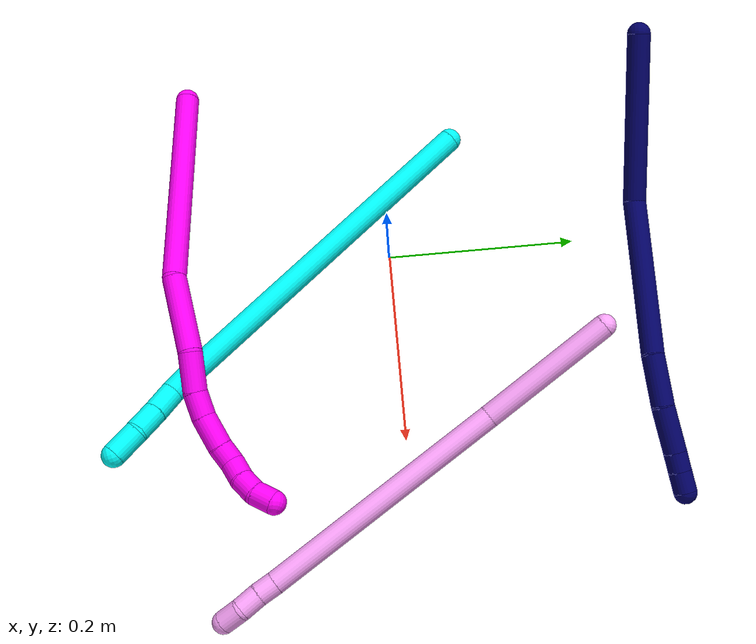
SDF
<sdf version="1.7">
 <world name="default">
  <model name="photoneo_s_sensor">
   <static>1</static>
   <pose>0 0 2 1.57079 1.57079 3.14159</pose>
   <link name="link">
    <inertial><mass>0.1</mass></inertial>
    <sensor name="sensor" type="depth">
     <update_rate>30</update_rate>
     <camera>
      <horizontal_fov>1.22</horizontal_fov>
      <image><width>1920</width><height>1200</height><format>B8G8R8</format></image>
      <clip><near>0.1</near><far>2</far></clip>
      <depth_camera><output>points</output></depth_camera>
     </camera>
     <plugin name="camera_plugin" filename="libgazebo_ros_depth_camera.so">
      <baseline>0.2</baseline>
      <alwaysOn>1</alwaysOn>
      <updateRate>0.0</updateRate>
      <cameraName>camera_ir</cameraName>
      <imageTopicName>/camera/color/image_raw</imageTopicName>
      <cameraInfoTopicName>/camera/color/camera_info</cameraInfoTopicName>
      <depthImageTopicName>/camera/depth/image_raw</depthImageTopicName>
      <depthImageCameraInfoTopicName>/camera/depth/camera_info</depthImageCameraInfoTopicName>
      <pointCloudTopicName>/camera/depth/points</pointCloudTopicName>
      <frameName>fr_optical</frameName>
      <pointCloudCutoff>0.1</pointCloudCutoff>
      <pointCloudCutoffMax>2.0</pointCloudCutoffMax>
      <distortionK1>0</distortionK1>
      <distortionK2>0</distortionK2>
      <distortionK3>0</distortionK3>
      <distortionT1>0</distortionT1>
      <distortionT2>0</distortionT2>
      <CxPrime>0</CxPrime>
      <Cx>0</Cx>
      <Cy>0</Cy>
      <focalLength>0</focalLength>
      <hackBaseline>0</hackBaseline>
     </plugin>
    </sensor>
   </link>
  </model>
  <model name="bin">
   <static>1</static>
   <link name="bottom">
    <collision name="collision-bottom">
     <pose>0 0 -0.01 0 -0 0</pose>
     <geometry><box><size>0.8 0.6 0.02</size></box></geometry>
     <surface>
      <friction><ode><mu>100</mu><mu2>100</mu2></ode></friction>
      <contact><collide_bitmask>65535</collide_bitmask></contact>
     </surface>
    </collision>
   </link>
   <link name="west_wall">
    <collision name="collision-west_wall">
     <pose>-0.41 0 0.1 0 -0 0</pose>
     <geometry><box><size>0.02 0.6 0.2</size></box></geometry>
     <surface>
      <friction><ode><mu>100</mu><mu2>100</mu2></ode></friction>
      <contact><collide_bitmask>65535</collide_bitmask></contact>
     </surface>
    </collision>
   </link>
   <link name="east_wall">
    <collision name="collision-east_wall">
     <pose>0.41 0 0.1 0 -0 0</pose>
     <geometry><box><size>0.02 0.6 0.2</size></box></geometry>
     <surface>
      <friction><ode><mu>100</mu><mu2>100</mu2></ode></friction>
      <contact><collide_bitmask>65535</collide_bitmask></contact>
     </surface>
    </collision>
   </link>
   <link name="south_wall">
    <collision name="collision-south_wall">
     <pose>0 -0.31 0.1 0 -0 0</pose>
     <geometry><box><size>0.8 0.02 0.2</size></box></geometry>
     <surface>
      <friction><ode><mu>100</mu><mu2>100</mu2></ode></friction>
      <contact><collide_bitmask>65535</collide_bitmask></contact>
     </surface>
    </collision>
   </link>
   <link name="north_wall">
    <collision name="collision-north_wall">
     <pose>0 0.31 0.1 0 -0 0</pose>
     <geometry><box><size>0.8 0.02 0.2</size></box></geometry>
     <surface>
      <friction><ode><mu>100</mu><mu2>100</mu2></ode></friction>
      <contact><collide_bitmask>65535</collide_bitmask></contact>
     </surface>
    </collision>
   </link>
  </model>
  <model name="3">
   <static>0</static>
   <link name="3">
    <collision name="collision-cylinder-e_1_1_4">
     <pose>0.038947 -0.082717 0.170787 0.451029 0.20243 0.046592</pose>
     <geometry><cylinder><radius>0.0125</radius><length>0.387439</length></cylinder></geometry>
     <surface>
      <friction><ode><mu>1.16</mu><mu2>1.16</mu2><slip1>0</slip1><slip2>0</slip2></ode></friction>
      <contact><ode><kp>1e+06</kp><kd>1</kd><max_vel>0</max_vel><min_depth>0.001</min_depth></ode></contact>
     </surface>
    </collision>
    <visual name="visual-cylinder-e_1_1_4">
     <pose>0.038947 -0.082717 0.170787 0.451029 0.20243 0.046592</pose>
     <geometry><cylinder><radius>0.0125</radius><length>0.387439</length></cylinder></geometry>
     <material><ambient>0.003922 1 0.996078 1</ambient></material>
    </visual>
    <collision name="collision-cylinder-e_2_4_5">
     <pose>0.08068 -0.170915 0.351093 0.522494 0.24832 0.066709</pose>
     <geometry><cylinder><radius>0.0125</radius><length>0.022664</length></cylinder></geometry>
     <surface>
      <friction><ode><mu>1.16</mu><mu2>1.16</mu2><slip1>0</slip1><slip2>0</slip2></ode></friction>
      <contact><ode><kp>1e+06</kp><kd>1</kd><max_vel>0</max_vel><min_depth>0.001</min_depth></ode></contact>
     </surface>
    </collision>
    <visual name="visual-cylinder-e_2_4_5">
     <pose>0.08068 -0.170915 0.351093 0.522494 0.24832 0.066709</pose>
     <geometry><cylinder><radius>0.0125</radius><length>0.022664</length></cylinder></geometry>
     <material><ambient>0.003922 1 0.996078 1</ambient></material>
    </visual>
    <collision name="collision-cylinder-e_3_5_6">
     <pose>0.090576 -0.184009 0.370883 0.637821 0.507613 0.170881</pose>
     <geometry><cylinder><radius>0.0125</radius><length>0.029259</length></cylinder></geometry>
     <surface>
      <friction><ode><mu>1.16</mu><mu2>1.16</mu2><slip1>0</slip1><slip2>0</slip2></ode></friction>
      <contact><ode><kp>1e+06</kp><kd>1</kd><max_vel>0</max_vel><min_depth>0.001</min_depth></ode></contact>
     </surface>
    </collision>
    <visual name="visual-cylinder-e_3_5_6">
     <pose>0.090576 -0.184009 0.370883 0.637821 0.507613 0.170881</pose>
     <geometry><cylinder><radius>0.0125</radius><length>0.029259</length></cylinder></geometry>
     <material><ambient>0.003922 1 0.996078 1</ambient></material>
    </visual>
    <collision name="collision-cylinder-e_4_6_7">
     <pose>0.10463 -0.198641 0.391606 0.591465 0.503944 0.156548</pose>
     <geometry><cylinder><radius>0.0125</radius><length>0.028755</length></cylinder></geometry>
     <surface>
      <friction><ode><mu>1.16</mu><mu2>1.16</mu2><slip1>0</slip1><slip2>0</slip2></ode></friction>
      <contact><ode><kp>1e+06</kp><kd>1</kd><max_vel>0</max_vel><min_depth>0.001</min_depth></ode></contact>
     </surface>
    </collision>
    <visual name="visual-cylinder-e_4_6_7">
     <pose>0.10463 -0.198641 0.391606 0.591465 0.503944 0.156548</pose>
     <geometry><cylinder><radius>0.0125</radius><length>0.028755</length></cylinder></geometry>
     <material><ambient>0.003922 1 0.996078 1</ambient></material>
    </visual>
    <collision name="collision-cylinder-e_5_7_2">
     <pose>0.115615 -0.213409 0.415391 0.526357 0.256385 0.06943</pose>
     <geometry><cylinder><radius>0.0125</radius><length>0.031884</length></cylinder></geometry>
     <surface>
      <friction><ode><mu>1.16</mu><mu2>1.16</mu2><slip1>0</slip1><slip2>0</slip2></ode></friction>
      <contact><ode><kp>1e+06</kp><kd>1</kd><max_vel>0</max_vel><min_depth>0.001</min_depth></ode></contact>
     </surface>
    </collision>
    <visual name="visual-cylinder-e_5_7_2">
     <pose>0.115615 -0.213409 0.415391 0.526357 0.256385 0.06943</pose>
     <geometry><cylinder><radius>0.0125</radius><length>0.031884</length></cylinder></geometry>
     <material><ambient>0.003922 1 0.996078 1</ambient></material>
    </visual>
    <collision name="collision-sphere-2">
     <pose>0.119658 -0.221156 0.428724 0 -0 0</pose>
     <geometry><sphere><radius>0.0125</radius></sphere></geometry>
     <surface>
      <friction><ode><mu>1.16</mu><mu2>1.16</mu2><slip1>0</slip1><slip2>0</slip2></ode></friction>
      <contact><ode><kp>1e+06</kp><kd>1</kd><max_vel>0</max_vel><min_depth>0.001</min_depth></ode></contact>
     </surface>
    </collision>
    <visual name="visual-sphere-2">
     <pose>0.119658 -0.221156 0.428724 0 -0 0</pose>
     <geometry><sphere><radius>0.0125</radius></sphere></geometry>
     <material><ambient>0.003922 1 0.996078 1</ambient></material>
    </visual>
    <collision name="collision-sphere-7">
     <pose>0.111573 -0.205662 0.402057 0 -0 0</pose>
     <geometry><sphere><radius>0.0125</radius></sphere></geometry>
     <surface>
      <friction><ode><mu>1.16</mu><mu2>1.16</mu2><slip1>0</slip1><slip2>0</slip2></ode></friction>
      <contact><ode><kp>1e+06</kp><kd>1</kd><max_vel>0</max_vel><min_depth>0.001</min_depth></ode></contact>
     </surface>
    </collision>
    <visual name="visual-sphere-7">
     <pose>0.111573 -0.205662 0.402057 0 -0 0</pose>
     <geometry><sphere><radius>0.0125</radius></sphere></geometry>
     <material><ambient>0.003922 1 0.996078 1</ambient></material>
    </visual>
    <collision name="collision-sphere-6">
     <pose>0.097687 -0.191621 0.381154 0 -0 0</pose>
     <geometry><sphere><radius>0.0125</radius></sphere></geometry>
     <surface>
      <friction><ode><mu>1.16</mu><mu2>1.16</mu2><slip1>0</slip1><slip2>0</slip2></ode></friction>
      <contact><ode><kp>1e+06</kp><kd>1</kd><max_vel>0</max_vel><min_depth>0.001</min_depth></ode></contact>
     </surface>
    </collision>
    <visual name="visual-sphere-6">
     <pose>0.097687 -0.191621 0.381154 0 -0 0</pose>
     <geometry><sphere><radius>0.0125</radius></sphere></geometry>
     <material><ambient>0.003922 1 0.996078 1</ambient></material>
    </visual>
    <collision name="collision-sphere-5">
     <pose>0.083465 -0.176396 0.360612 0 -0 0</pose>
     <geometry><sphere><radius>0.0125</radius></sphere></geometry>
     <surface>
      <friction><ode><mu>1.16</mu><mu2>1.16</mu2><slip1>0</slip1><slip2>0</slip2></ode></friction>
      <contact><ode><kp>1e+06</kp><kd>1</kd><max_vel>0</max_vel><min_depth>0.001</min_depth></ode></contact>
     </surface>
    </collision>
    <visual name="visual-sphere-5">
     <pose>0.083465 -0.176396 0.360612 0 -0 0</pose>
     <geometry><sphere><radius>0.0125</radius></sphere></geometry>
     <material><ambient>0.003922 1 0.996078 1</ambient></material>
    </visual>
    <collision name="collision-sphere-1">
     <geometry><sphere><radius>0.0125</radius></sphere></geometry>
     <surface>
      <friction><ode><mu>1.16</mu><mu2>1.16</mu2><slip1>0</slip1><slip2>0</slip2></ode></friction>
      <contact><ode><kp>1e+06</kp><kd>1</kd><max_vel>0</max_vel><min_depth>0.001</min_depth></ode></contact>
     </surface>
    </collision>
    <visual name="visual-sphere-1">
     <geometry><sphere><radius>0.0125</radius></sphere></geometry>
     <material><ambient>0.003922 1 0.996078 1</ambient></material>
    </visual>
    <collision name="collision-sphere-4">
     <pose>0.077895 -0.165433 0.341575 0 -0 0</pose>
     <geometry><sphere><radius>0.0125</radius></sphere></geometry>
     <surface>
      <friction><ode><mu>1.16</mu><mu2>1.16</mu2><slip1>0</slip1><slip2>0</slip2></ode></friction>
      <contact><ode><kp>1e+06</kp><kd>1</kd><max_vel>0</max_vel><min_depth>0.001</min_depth></ode></contact>
     </surface>
    </collision>
    <visual name="visual-sphere-4">
     <pose>0.077895 -0.165433 0.341575 0 -0 0</pose>
     <geometry><sphere><radius>0.0125</radius></sphere></geometry>
     <material><ambient>0.003922 1 0.996078 1</ambient></material>
    </visual>
    <inertial>
     <pose>0.052526 -0.107642 0.218966 0 -0 0</pose>
     <mass>0.5</mass>
     <inertia>
      <ixx>0.005001</ixx>
      <ixy>0</ixy>
      <ixz>0</ixz>
      <iyy>0.004607</iyy>
      <iyz>0</iyz>
      <izz>0.001133</izz>
     </inertia>
    </inertial>
   </link>
   <pose>-0.122508 0.07688 0.012292 2.08361 -1.54 -0.272068</pose>
  </model>
  <model name="4">
   <static>0</static>
   <link name="4">
    <collision name="collision-cylinder-e_1_1_4">
     <pose>0.013404 -0.070934 -0.025686 1.91822 0.175836 0.250018</pose>
     <geometry><cylinder><radius>0.0125</radius><length>0.153246</length></cylinder></geometry>
     <surface>
      <friction><ode><mu>1.16</mu><mu2>1.16</mu2><slip1>0</slip1><slip2>0</slip2></ode></friction>
      <contact><ode><kp>1e+06</kp><kd>1</kd><max_vel>0</max_vel><min_depth>0.001</min_depth></ode></contact>
     </surface>
    </collision>
    <visual name="visual-cylinder-e_1_1_4">
     <pose>0.013404 -0.070934 -0.025686 1.91822 0.175836 0.250018</pose>
     <geometry><cylinder><radius>0.0125</radius><length>0.153246</length></cylinder></geometry>
     <material><ambient>1 0.65098 0.996078 1</ambient></material>
    </visual>
    <collision name="collision-cylinder-e_2_4_5">
     <pose>0.04358 -0.26639 -0.112298 2.02583 0.120406 0.192594</pose>
     <geometry><cylinder><radius>0.0125</radius><length>0.279277</length></cylinder></geometry>
     <surface>
      <friction><ode><mu>1.16</mu><mu2>1.16</mu2><slip1>0</slip1><slip2>0</slip2></ode></friction>
      <contact><ode><kp>1e+06</kp><kd>1</kd><max_vel>0</max_vel><min_depth>0.001</min_depth></ode></contact>
     </surface>
    </collision>
    <visual name="visual-cylinder-e_2_4_5">
     <pose>0.04358 -0.26639 -0.112298 2.02583 0.120406 0.192594</pose>
     <geometry><cylinder><radius>0.0125</radius><length>0.279277</length></cylinder></geometry>
     <material><ambient>1 0.65098 0.996078 1</ambient></material>
    </visual>
    <collision name="collision-cylinder-e_3_5_6">
     <pose>0.06184 -0.399928 -0.178131 2.06913 0.143842 0.24127</pose>
     <geometry><cylinder><radius>0.0125</radius><length>0.020744</length></cylinder></geometry>
     <surface>
      <friction><ode><mu>1.16</mu><mu2>1.16</mu2><slip1>0</slip1><slip2>0</slip2></ode></friction>
      <contact><ode><kp>1e+06</kp><kd>1</kd><max_vel>0</max_vel><min_depth>0.001</min_depth></ode></contact>
     </surface>
    </collision>
    <visual name="visual-cylinder-e_3_5_6">
     <pose>0.06184 -0.399928 -0.178131 2.06913 0.143842 0.24127</pose>
     <geometry><cylinder><radius>0.0125</radius><length>0.020744</length></cylinder></geometry>
     <material><ambient>1 0.65098 0.996078 1</ambient></material>
    </visual>
    <collision name="collision-cylinder-e_4_6_7">
     <pose>0.064024 -0.419269 -0.188258 2.03901 0.060245 0.097928</pose>
     <geometry><cylinder><radius>0.0125</radius><length>0.023181</length></cylinder></geometry>
     <surface>
      <friction><ode><mu>1.16</mu><mu2>1.16</mu2><slip1>0</slip1><slip2>0</slip2></ode></friction>
      <contact><ode><kp>1e+06</kp><kd>1</kd><max_vel>0</max_vel><min_depth>0.001</min_depth></ode></contact>
     </surface>
    </collision>
    <visual name="visual-cylinder-e_4_6_7">
     <pose>0.064024 -0.419269 -0.188258 2.03901 0.060245 0.097928</pose>
     <geometry><cylinder><radius>0.0125</radius><length>0.023181</length></cylinder></geometry>
     <material><ambient>1 0.65098 0.996078 1</ambient></material>
    </visual>
    <collision name="collision-cylinder-e_5_7_2">
     <pose>0.068271 -0.440646 -0.195458 1.74793 0.306111 0.364564</pose>
     <geometry><cylinder><radius>0.0125</radius><length>0.023551</length></cylinder></geometry>
     <surface>
      <friction><ode><mu>1.16</mu><mu2>1.16</mu2><slip1>0</slip1><slip2>0</slip2></ode></friction>
      <contact><ode><kp>1e+06</kp><kd>1</kd><max_vel>0</max_vel><min_depth>0.001</min_depth></ode></contact>
     </surface>
    </collision>
    <visual name="visual-cylinder-e_5_7_2">
     <pose>0.068271 -0.440646 -0.195458 1.74793 0.306111 0.364564</pose>
     <geometry><cylinder><radius>0.0125</radius><length>0.023551</length></cylinder></geometry>
     <material><ambient>1 0.65098 0.996078 1</ambient></material>
    </visual>
    <collision name="collision-sphere-2">
     <pose>0.071819 -0.451699 -0.197436 0 -0 0</pose>
     <geometry><sphere><radius>0.0125</radius></sphere></geometry>
     <surface>
      <friction><ode><mu>1.16</mu><mu2>1.16</mu2><slip1>0</slip1><slip2>0</slip2></ode></friction>
      <contact><ode><kp>1e+06</kp><kd>1</kd><max_vel>0</max_vel><min_depth>0.001</min_depth></ode></contact>
     </surface>
    </collision>
    <visual name="visual-sphere-2">
     <pose>0.071819 -0.451699 -0.197436 0 -0 0</pose>
     <geometry><sphere><radius>0.0125</radius></sphere></geometry>
     <material><ambient>1 0.65098 0.996078 1</ambient></material>
    </visual>
    <collision name="collision-sphere-7">
     <pose>0.064722 -0.429593 -0.193479 0 -0 0</pose>
     <geometry><sphere><radius>0.0125</radius></sphere></geometry>
     <surface>
      <friction><ode><mu>1.16</mu><mu2>1.16</mu2><slip1>0</slip1><slip2>0</slip2></ode></friction>
      <contact><ode><kp>1e+06</kp><kd>1</kd><max_vel>0</max_vel><min_depth>0.001</min_depth></ode></contact>
     </surface>
    </collision>
    <visual name="visual-sphere-7">
     <pose>0.064722 -0.429593 -0.193479 0 -0 0</pose>
     <geometry><sphere><radius>0.0125</radius></sphere></geometry>
     <material><ambient>1 0.65098 0.996078 1</ambient></material>
    </visual>
    <collision name="collision-sphere-6">
     <pose>0.063326 -0.408945 -0.183037 0 -0 0</pose>
     <geometry><sphere><radius>0.0125</radius></sphere></geometry>
     <surface>
      <friction><ode><mu>1.16</mu><mu2>1.16</mu2><slip1>0</slip1><slip2>0</slip2></ode></friction>
      <contact><ode><kp>1e+06</kp><kd>1</kd><max_vel>0</max_vel><min_depth>0.001</min_depth></ode></contact>
     </surface>
    </collision>
    <visual name="visual-sphere-6">
     <pose>0.063326 -0.408945 -0.183037 0 -0 0</pose>
     <geometry><sphere><radius>0.0125</radius></sphere></geometry>
     <material><ambient>1 0.65098 0.996078 1</ambient></material>
    </visual>
    <collision name="collision-sphere-5">
     <pose>0.060353 -0.390912 -0.173224 0 -0 0</pose>
     <geometry><sphere><radius>0.0125</radius></sphere></geometry>
     <surface>
      <friction><ode><mu>1.16</mu><mu2>1.16</mu2><slip1>0</slip1><slip2>0</slip2></ode></friction>
      <contact><ode><kp>1e+06</kp><kd>1</kd><max_vel>0</max_vel><min_depth>0.001</min_depth></ode></contact>
     </surface>
    </collision>
    <visual name="visual-sphere-5">
     <pose>0.060353 -0.390912 -0.173224 0 -0 0</pose>
     <geometry><sphere><radius>0.0125</radius></sphere></geometry>
     <material><ambient>1 0.65098 0.996078 1</ambient></material>
    </visual>
    <collision name="collision-sphere-1">
     <geometry><sphere><radius>0.0125</radius></sphere></geometry>
     <surface>
      <friction><ode><mu>1.16</mu><mu2>1.16</mu2><slip1>0</slip1><slip2>0</slip2></ode></friction>
      <contact><ode><kp>1e+06</kp><kd>1</kd><max_vel>0</max_vel><min_depth>0.001</min_depth></ode></contact>
     </surface>
    </collision>
    <visual name="visual-sphere-1">
     <geometry><sphere><radius>0.0125</radius></sphere></geometry>
     <material><ambient>1 0.65098 0.996078 1</ambient></material>
    </visual>
    <collision name="collision-sphere-4">
     <pose>0.026807 -0.141868 -0.051372 0 -0 0</pose>
     <geometry><sphere><radius>0.0125</radius></sphere></geometry>
     <surface>
      <friction><ode><mu>1.16</mu><mu2>1.16</mu2><slip1>0</slip1><slip2>0</slip2></ode></friction>
      <contact><ode><kp>1e+06</kp><kd>1</kd><max_vel>0</max_vel><min_depth>0.001</min_depth></ode></contact>
     </surface>
    </collision>
    <visual name="visual-sphere-4">
     <pose>0.026807 -0.141868 -0.051372 0 -0 0</pose>
     <geometry><sphere><radius>0.0125</radius></sphere></geometry>
     <material><ambient>1 0.65098 0.996078 1</ambient></material>
    </visual>
    <inertial>
     <pose>0.0372 -0.22732 -0.095922 0 -0 0</pose>
     <mass>0.5</mass>
     <inertia>
      <ixx>0.002505</ixx>
      <ixy>0</ixy>
      <ixz>0</ixz>
      <iyy>-0.000453</iyy>
      <iyz>0</iyz>
      <izz>0.001627</izz>
     </inertia>
    </inertial>
   </link>
   <pose>0.104651 0.216395 0.056415 2.74381 0.50217 -2.44223</pose>
  </model>
  <model name="7">
   <static>0</static>
   <link name="7">
    <collision name="collision-cylinder-e_1_1_4">
     <pose>0.087016 0.017074 0.012875 -0.924702 1.32982 -0.744983</pose>
     <geometry><cylinder><radius>0.0125</radius><length>0.179211</length></cylinder></geometry>
     <surface>
      <friction><ode><mu>1.16</mu><mu2>1.16</mu2><slip1>0</slip1><slip2>0</slip2></ode></friction>
      <contact><ode><kp>1e+06</kp><kd>1</kd><max_vel>0</max_vel><min_depth>0.001</min_depth></ode></contact>
     </surface>
    </collision>
    <visual name="visual-cylinder-e_1_1_4">
     <pose>0.087016 0.017074 0.012875 -0.924702 1.32982 -0.744983</pose>
     <geometry><cylinder><radius>0.0125</radius><length>0.179211</length></cylinder></geometry>
     <material><ambient>0.003922 0 0.403922 1</ambient></material>
    </visual>
    <collision name="collision-cylinder-e_2_4_5">
     <pose>0.256121 0.011674 0.038494 1.05495 1.26587 0.807732</pose>
     <geometry><cylinder><radius>0.0125</radius><length>0.172115</length></cylinder></geometry>
     <surface>
      <friction><ode><mu>1.16</mu><mu2>1.16</mu2><slip1>0</slip1><slip2>0</slip2></ode></friction>
      <contact><ode><kp>1e+06</kp><kd>1</kd><max_vel>0</max_vel><min_depth>0.001</min_depth></ode></contact>
     </surface>
    </collision>
    <visual name="visual-cylinder-e_2_4_5">
     <pose>0.256121 0.011674 0.038494 1.05495 1.26587 0.807732</pose>
     <geometry><cylinder><radius>0.0125</radius><length>0.172115</length></cylinder></geometry>
     <material><ambient>0.003922 0 0.403922 1</ambient></material>
    </visual>
    <collision name="collision-cylinder-e_3_5_6">
     <pose>0.364711 -0.015306 0.058433 0.55946 1.26082 0.413272</pose>
     <geometry><cylinder><radius>0.0125</radius><length>0.055657</length></cylinder></geometry>
     <surface>
      <friction><ode><mu>1.16</mu><mu2>1.16</mu2><slip1>0</slip1><slip2>0</slip2></ode></friction>
      <contact><ode><kp>1e+06</kp><kd>1</kd><max_vel>0</max_vel><min_depth>0.001</min_depth></ode></contact>
     </surface>
    </collision>
    <visual name="visual-cylinder-e_3_5_6">
     <pose>0.364711 -0.015306 0.058433 0.55946 1.26082 0.413272</pose>
     <geometry><cylinder><radius>0.0125</radius><length>0.055657</length></cylinder></geometry>
     <material><ambient>0.003922 0 0.403922 1</ambient></material>
    </visual>
    <collision name="collision-cylinder-e_4_6_7">
     <pose>0.414403 -0.020569 0.074724 0.083109 1.1958 0.05662</pose>
     <geometry><cylinder><radius>0.0125</radius><length>0.049843</length></cylinder></geometry>
     <surface>
      <friction><ode><mu>1.16</mu><mu2>1.16</mu2><slip1>0</slip1><slip2>0</slip2></ode></friction>
      <contact><ode><kp>1e+06</kp><kd>1</kd><max_vel>0</max_vel><min_depth>0.001</min_depth></ode></contact>
     </surface>
    </collision>
    <visual name="visual-cylinder-e_4_6_7">
     <pose>0.414403 -0.020569 0.074724 0.083109 1.1958 0.05662</pose>
     <geometry><cylinder><radius>0.0125</radius><length>0.049843</length></cylinder></geometry>
     <material><ambient>0.003922 0 0.403922 1</ambient></material>
    </visual>
    <collision name="collision-cylinder-e_5_7_8">
     <pose>0.447201 -0.021836 0.087415 0.140857 1.20948 0.097433</pose>
     <geometry><cylinder><radius>0.0125</radius><length>0.020542</length></cylinder></geometry>
     <surface>
      <friction><ode><mu>1.16</mu><mu2>1.16</mu2><slip1>0</slip1><slip2>0</slip2></ode></friction>
      <contact><ode><kp>1e+06</kp><kd>1</kd><max_vel>0</max_vel><min_depth>0.001</min_depth></ode></contact>
     </surface>
    </collision>
    <visual name="visual-cylinder-e_5_7_8">
     <pose>0.447201 -0.021836 0.087415 0.140857 1.20948 0.097433</pose>
     <geometry><cylinder><radius>0.0125</radius><length>0.020542</length></cylinder></geometry>
     <material><ambient>0.003922 0 0.403922 1</ambient></material>
    </visual>
    <collision name="collision-cylinder-e_6_8_2">
     <pose>0.467374 -0.022958 0.095014 0.151747 1.20475 0.104451</pose>
     <geometry><cylinder><radius>0.0125</radius><length>0.022631</length></cylinder></geometry>
     <surface>
      <friction><ode><mu>1.16</mu><mu2>1.16</mu2><slip1>0</slip1><slip2>0</slip2></ode></friction>
      <contact><ode><kp>1e+06</kp><kd>1</kd><max_vel>0</max_vel><min_depth>0.001</min_depth></ode></contact>
     </surface>
    </collision>
    <visual name="visual-cylinder-e_6_8_2">
     <pose>0.467374 -0.022958 0.095014 0.151747 1.20475 0.104451</pose>
     <geometry><cylinder><radius>0.0125</radius><length>0.022631</length></cylinder></geometry>
     <material><ambient>0.003922 0 0.403922 1</ambient></material>
    </visual>
    <collision name="collision-sphere-2">
     <pose>0.47794 -0.02357 0.099017 0 -0 0</pose>
     <geometry><sphere><radius>0.0125</radius></sphere></geometry>
     <surface>
      <friction><ode><mu>1.16</mu><mu2>1.16</mu2><slip1>0</slip1><slip2>0</slip2></ode></friction>
      <contact><ode><kp>1e+06</kp><kd>1</kd><max_vel>0</max_vel><min_depth>0.001</min_depth></ode></contact>
     </surface>
    </collision>
    <visual name="visual-sphere-2">
     <pose>0.47794 -0.02357 0.099017 0 -0 0</pose>
     <geometry><sphere><radius>0.0125</radius></sphere></geometry>
     <material><ambient>0.003922 0 0.403922 1</ambient></material>
    </visual>
    <collision name="collision-sphere-4">
     <pose>0.174033 0.034148 0.02575 0 -0 0</pose>
     <geometry><sphere><radius>0.0125</radius></sphere></geometry>
     <surface>
      <friction><ode><mu>1.16</mu><mu2>1.16</mu2><slip1>0</slip1><slip2>0</slip2></ode></friction>
      <contact><ode><kp>1e+06</kp><kd>1</kd><max_vel>0</max_vel><min_depth>0.001</min_depth></ode></contact>
     </surface>
    </collision>
    <visual name="visual-sphere-4">
     <pose>0.174033 0.034148 0.02575 0 -0 0</pose>
     <geometry><sphere><radius>0.0125</radius></sphere></geometry>
     <material><ambient>0.003922 0 0.403922 1</ambient></material>
    </visual>
    <collision name="collision-sphere-1">
     <geometry><sphere><radius>0.0125</radius></sphere></geometry>
     <surface>
      <friction><ode><mu>1.16</mu><mu2>1.16</mu2><slip1>0</slip1><slip2>0</slip2></ode></friction>
      <contact><ode><kp>1e+06</kp><kd>1</kd><max_vel>0</max_vel><min_depth>0.001</min_depth></ode></contact>
     </surface>
    </collision>
    <visual name="visual-sphere-1">
     <geometry><sphere><radius>0.0125</radius></sphere></geometry>
     <material><ambient>0.003922 0 0.403922 1</ambient></material>
    </visual>
    <collision name="collision-sphere-8">
     <pose>0.456809 -0.022346 0.09101 0 -0 0</pose>
     <geometry><sphere><radius>0.0125</radius></sphere></geometry>
     <surface>
      <friction><ode><mu>1.16</mu><mu2>1.16</mu2><slip1>0</slip1><slip2>0</slip2></ode></friction>
      <contact><ode><kp>1e+06</kp><kd>1</kd><max_vel>0</max_vel><min_depth>0.001</min_depth></ode></contact>
     </surface>
    </collision>
    <visual name="visual-sphere-8">
     <pose>0.456809 -0.022346 0.09101 0 -0 0</pose>
     <geometry><sphere><radius>0.0125</radius></sphere></geometry>
     <material><ambient>0.003922 0 0.403922 1</ambient></material>
    </visual>
    <collision name="collision-sphere-5">
     <pose>0.338209 -0.0108 0.051238 0 -0 0</pose>
     <geometry><sphere><radius>0.0125</radius></sphere></geometry>
     <surface>
      <friction><ode><mu>1.16</mu><mu2>1.16</mu2><slip1>0</slip1><slip2>0</slip2></ode></friction>
      <contact><ode><kp>1e+06</kp><kd>1</kd><max_vel>0</max_vel><min_depth>0.001</min_depth></ode></contact>
     </surface>
    </collision>
    <visual name="visual-sphere-5">
     <pose>0.338209 -0.0108 0.051238 0 -0 0</pose>
     <geometry><sphere><radius>0.0125</radius></sphere></geometry>
     <material><ambient>0.003922 0 0.403922 1</ambient></material>
    </visual>
    <collision name="collision-sphere-6">
     <pose>0.391213 -0.019811 0.065627 0 -0 0</pose>
     <geometry><sphere><radius>0.0125</radius></sphere></geometry>
     <surface>
      <friction><ode><mu>1.16</mu><mu2>1.16</mu2><slip1>0</slip1><slip2>0</slip2></ode></friction>
      <contact><ode><kp>1e+06</kp><kd>1</kd><max_vel>0</max_vel><min_depth>0.001</min_depth></ode></contact>
     </surface>
    </collision>
    <visual name="visual-sphere-6">
     <pose>0.391213 -0.019811 0.065627 0 -0 0</pose>
     <geometry><sphere><radius>0.0125</radius></sphere></geometry>
     <material><ambient>0.003922 0 0.403922 1</ambient></material>
    </visual>
    <collision name="collision-sphere-7">
     <pose>0.437593 -0.021326 0.08382 0 -0 0</pose>
     <geometry><sphere><radius>0.0125</radius></sphere></geometry>
     <surface>
      <friction><ode><mu>1.16</mu><mu2>1.16</mu2><slip1>0</slip1><slip2>0</slip2></ode></friction>
      <contact><ode><kp>1e+06</kp><kd>1</kd><max_vel>0</max_vel><min_depth>0.001</min_depth></ode></contact>
     </surface>
    </collision>
    <visual name="visual-sphere-7">
     <pose>0.437593 -0.021326 0.08382 0 -0 0</pose>
     <geometry><sphere><radius>0.0125</radius></sphere></geometry>
     <material><ambient>0.003922 0 0.403922 1</ambient></material>
    </visual>
    <inertial>
     <pose>0.240788 0.004448 0.039711 0 -0 0</pose>
     <mass>0.5</mass>
     <inertia>
      <ixx>0.00024</ixx>
      <ixy>0</ixy>
      <ixz>0</ixz>
      <iyy>0.000924</iyy>
      <iyz>0</iyz>
      <izz>-0.000884</izz>
     </inertia>
    </inertial>
   </link>
   <pose>-0.202043 0.285983 0.074764 -1.72341 0.144881 -0.207402</pose>
  </model>
  <model name="10">
   <static>0</static>
   <link name="10">
    <collision name="collision-cylinder-e_1_1_4">
     <pose>-0.000416 -0.003646 -0.11655 3.11032 -0.003571 -0.227334</pose>
     <geometry><cylinder><radius>0.0125</radius><length>0.233215</length></cylinder></geometry>
     <surface>
      <friction><ode><mu>1.16</mu><mu2>1.16</mu2><slip1>0</slip1><slip2>0</slip2></ode></friction>
      <contact><ode><kp>1e+06</kp><kd>1</kd><max_vel>0</max_vel><min_depth>0.001</min_depth></ode></contact>
     </surface>
    </collision>
    <visual name="visual-cylinder-e_1_1_4">
     <pose>-0.000416 -0.003646 -0.11655 3.11032 -0.003571 -0.227334</pose>
     <geometry><cylinder><radius>0.0125</radius><length>0.233215</length></cylinder></geometry>
     <material><ambient>1 0 0.964706 1</ambient></material>
    </visual>
    <collision name="collision-cylinder-e_2_4_5">
     <pose>0.007833 -0.017387 -0.271653 2.88551 0.214121 1.39116</pose>
     <geometry><cylinder><radius>0.0125</radius><length>0.081568</length></cylinder></geometry>
     <surface>
      <friction><ode><mu>1.16</mu><mu2>1.16</mu2><slip1>0</slip1><slip2>0</slip2></ode></friction>
      <contact><ode><kp>1e+06</kp><kd>1</kd><max_vel>0</max_vel><min_depth>0.001</min_depth></ode></contact>
     </surface>
    </collision>
    <visual name="visual-cylinder-e_2_4_5">
     <pose>0.007833 -0.017387 -0.271653 2.88551 0.214121 1.39116</pose>
     <geometry><cylinder><radius>0.0125</radius><length>0.081568</length></cylinder></geometry>
     <material><ambient>1 0 0.964706 1</ambient></material>
    </visual>
    <collision name="collision-cylinder-e_3_5_6">
     <pose>0.026021 -0.030119 -0.327944 2.99398 0.488096 2.56432</pose>
     <geometry><cylinder><radius>0.0125</radius><length>0.040607</length></cylinder></geometry>
     <surface>
      <friction><ode><mu>1.16</mu><mu2>1.16</mu2><slip1>0</slip1><slip2>0</slip2></ode></friction>
      <contact><ode><kp>1e+06</kp><kd>1</kd><max_vel>0</max_vel><min_depth>0.001</min_depth></ode></contact>
     </surface>
    </collision>
    <visual name="visual-cylinder-e_3_5_6">
     <pose>0.026021 -0.030119 -0.327944 2.99398 0.488096 2.56432</pose>
     <geometry><cylinder><radius>0.0125</radius><length>0.040607</length></cylinder></geometry>
     <material><ambient>1 0 0.964706 1</ambient></material>
    </visual>
    <collision name="collision-cylinder-e_4_6_7">
     <pose>0.041308 -0.037095 -0.356534 2.76128 0.458316 1.76176</pose>
     <geometry><cylinder><radius>0.0125</radius><length>0.026064</length></cylinder></geometry>
     <surface>
      <friction><ode><mu>1.16</mu><mu2>1.16</mu2><slip1>0</slip1><slip2>0</slip2></ode></friction>
      <contact><ode><kp>1e+06</kp><kd>1</kd><max_vel>0</max_vel><min_depth>0.001</min_depth></ode></contact>
     </surface>
    </collision>
    <visual name="visual-cylinder-e_4_6_7">
     <pose>0.041308 -0.037095 -0.356534 2.76128 0.458316 1.76176</pose>
     <geometry><cylinder><radius>0.0125</radius><length>0.026064</length></cylinder></geometry>
     <material><ambient>1 0 0.964706 1</ambient></material>
    </visual>
    <collision name="collision-cylinder-e_5_7_8">
     <pose>0.053008 -0.049876 -0.380839 2.58117 0.357559 1.12141</pose>
     <geometry><cylinder><radius>0.0125</radius><length>0.033911</length></cylinder></geometry>
     <surface>
      <friction><ode><mu>1.16</mu><mu2>1.16</mu2><slip1>0</slip1><slip2>0</slip2></ode></friction>
      <contact><ode><kp>1e+06</kp><kd>1</kd><max_vel>0</max_vel><min_depth>0.001</min_depth></ode></contact>
     </surface>
    </collision>
    <visual name="visual-cylinder-e_5_7_8">
     <pose>0.053008 -0.049876 -0.380839 2.58117 0.357559 1.12141</pose>
     <geometry><cylinder><radius>0.0125</radius><length>0.033911</length></cylinder></geometry>
     <material><ambient>1 0 0.964706 1</ambient></material>
    </visual>
    <collision name="collision-cylinder-e_6_8_9">
     <pose>0.062546 -0.064483 -0.401454 2.43088 0.36432 0.921449</pose>
     <geometry><cylinder><radius>0.0125</radius><length>0.020227</length></cylinder></geometry>
     <surface>
      <friction><ode><mu>1.16</mu><mu2>1.16</mu2><slip1>0</slip1><slip2>0</slip2></ode></friction>
      <contact><ode><kp>1e+06</kp><kd>1</kd><max_vel>0</max_vel><min_depth>0.001</min_depth></ode></contact>
     </surface>
    </collision>
    <visual name="visual-cylinder-e_6_8_9">
     <pose>0.062546 -0.064483 -0.401454 2.43088 0.36432 0.921449</pose>
     <geometry><cylinder><radius>0.0125</radius><length>0.020227</length></cylinder></geometry>
     <material><ambient>1 0 0.964706 1</ambient></material>
    </visual>
    <collision name="collision-cylinder-e_7_9_10">
     <pose>0.064974 -0.076077 -0.417959 2.61519 -0.108371 -0.397271</pose>
     <geometry><cylinder><radius>0.0125</radius><length>0.021739</length></cylinder></geometry>
     <surface>
      <friction><ode><mu>1.16</mu><mu2>1.16</mu2><slip1>0</slip1><slip2>0</slip2></ode></friction>
      <contact><ode><kp>1e+06</kp><kd>1</kd><max_vel>0</max_vel><min_depth>0.001</min_depth></ode></contact>
     </surface>
    </collision>
    <visual name="visual-cylinder-e_7_9_10">
     <pose>0.064974 -0.076077 -0.417959 2.61519 -0.108371 -0.397271</pose>
     <geometry><cylinder><radius>0.0125</radius><length>0.021739</length></cylinder></geometry>
     <material><ambient>1 0 0.964706 1</ambient></material>
    </visual>
    <collision name="collision-cylinder-e_8_10_11">
     <pose>0.063193 -0.088592 -0.434918 2.39228 -0.058108 -0.147546</pose>
     <geometry><cylinder><radius>0.0125</radius><length>0.020839</length></cylinder></geometry>
     <surface>
      <friction><ode><mu>1.16</mu><mu2>1.16</mu2><slip1>0</slip1><slip2>0</slip2></ode></friction>
      <contact><ode><kp>1e+06</kp><kd>1</kd><max_vel>0</max_vel><min_depth>0.001</min_depth></ode></contact>
     </surface>
    </collision>
    <visual name="visual-cylinder-e_8_10_11">
     <pose>0.063193 -0.088592 -0.434918 2.39228 -0.058108 -0.147546</pose>
     <geometry><cylinder><radius>0.0125</radius><length>0.020839</length></cylinder></geometry>
     <material><ambient>1 0 0.964706 1</ambient></material>
    </visual>
    <collision name="collision-cylinder-e_9_11_2">
     <pose>0.062085 -0.105256 -0.447741 2.0687 -0.046133 -0.077561</pose>
     <geometry><cylinder><radius>0.0125</radius><length>0.021829</length></cylinder></geometry>
     <surface>
      <friction><ode><mu>1.16</mu><mu2>1.16</mu2><slip1>0</slip1><slip2>0</slip2></ode></friction>
      <contact><ode><kp>1e+06</kp><kd>1</kd><max_vel>0</max_vel><min_depth>0.001</min_depth></ode></contact>
     </surface>
    </collision>
    <visual name="visual-cylinder-e_9_11_2">
     <pose>0.062085 -0.105256 -0.447741 2.0687 -0.046133 -0.077561</pose>
     <geometry><cylinder><radius>0.0125</radius><length>0.021829</length></cylinder></geometry>
     <material><ambient>1 0 0.964706 1</ambient></material>
    </visual>
    <collision name="collision-sphere-2">
     <pose>0.061581 -0.114835 -0.452948 0 -0 0</pose>
     <geometry><sphere><radius>0.0125</radius></sphere></geometry>
     <surface>
      <friction><ode><mu>1.16</mu><mu2>1.16</mu2><slip1>0</slip1><slip2>0</slip2></ode></friction>
      <contact><ode><kp>1e+06</kp><kd>1</kd><max_vel>0</max_vel><min_depth>0.001</min_depth></ode></contact>
     </surface>
    </collision>
    <visual name="visual-sphere-2">
     <pose>0.061581 -0.114835 -0.452948 0 -0 0</pose>
     <geometry><sphere><radius>0.0125</radius></sphere></geometry>
     <material><ambient>1 0 0.964706 1</ambient></material>
    </visual>
    <collision name="collision-sphere-11">
     <pose>0.062588 -0.095677 -0.442534 0 -0 0</pose>
     <geometry><sphere><radius>0.0125</radius></sphere></geometry>
     <surface>
      <friction><ode><mu>1.16</mu><mu2>1.16</mu2><slip1>0</slip1><slip2>0</slip2></ode></friction>
      <contact><ode><kp>1e+06</kp><kd>1</kd><max_vel>0</max_vel><min_depth>0.001</min_depth></ode></contact>
     </surface>
    </collision>
    <visual name="visual-sphere-11">
     <pose>0.062588 -0.095677 -0.442534 0 -0 0</pose>
     <geometry><sphere><radius>0.0125</radius></sphere></geometry>
     <material><ambient>1 0 0.964706 1</ambient></material>
    </visual>
    <collision name="collision-sphere-10">
     <pose>0.063798 -0.081506 -0.427302 0 -0 0</pose>
     <geometry><sphere><radius>0.0125</radius></sphere></geometry>
     <surface>
      <friction><ode><mu>1.16</mu><mu2>1.16</mu2><slip1>0</slip1><slip2>0</slip2></ode></friction>
      <contact><ode><kp>1e+06</kp><kd>1</kd><max_vel>0</max_vel><min_depth>0.001</min_depth></ode></contact>
     </surface>
    </collision>
    <visual name="visual-sphere-10">
     <pose>0.063798 -0.081506 -0.427302 0 -0 0</pose>
     <geometry><sphere><radius>0.0125</radius></sphere></geometry>
     <material><ambient>1 0 0.964706 1</ambient></material>
    </visual>
    <collision name="collision-sphere-9">
     <pose>0.066149 -0.070648 -0.408616 0 -0 0</pose>
     <geometry><sphere><radius>0.0125</radius></sphere></geometry>
     <surface>
      <friction><ode><mu>1.16</mu><mu2>1.16</mu2><slip1>0</slip1><slip2>0</slip2></ode></friction>
      <contact><ode><kp>1e+06</kp><kd>1</kd><max_vel>0</max_vel><min_depth>0.001</min_depth></ode></contact>
     </surface>
    </collision>
    <visual name="visual-sphere-9">
     <pose>0.066149 -0.070648 -0.408616 0 -0 0</pose>
     <geometry><sphere><radius>0.0125</radius></sphere></geometry>
     <material><ambient>1 0 0.964706 1</ambient></material>
    </visual>
    <collision name="collision-sphere-4">
     <pose>-0.000833 -0.007293 -0.2331 0 -0 0</pose>
     <geometry><sphere><radius>0.0125</radius></sphere></geometry>
     <surface>
      <friction><ode><mu>1.16</mu><mu2>1.16</mu2><slip1>0</slip1><slip2>0</slip2></ode></friction>
      <contact><ode><kp>1e+06</kp><kd>1</kd><max_vel>0</max_vel><min_depth>0.001</min_depth></ode></contact>
     </surface>
    </collision>
    <visual name="visual-sphere-4">
     <pose>-0.000833 -0.007293 -0.2331 0 -0 0</pose>
     <geometry><sphere><radius>0.0125</radius></sphere></geometry>
     <material><ambient>1 0 0.964706 1</ambient></material>
    </visual>
    <collision name="collision-sphere-1">
     <geometry><sphere><radius>0.0125</radius></sphere></geometry>
     <surface>
      <friction><ode><mu>1.16</mu><mu2>1.16</mu2><slip1>0</slip1><slip2>0</slip2></ode></friction>
      <contact><ode><kp>1e+06</kp><kd>1</kd><max_vel>0</max_vel><min_depth>0.001</min_depth></ode></contact>
     </surface>
    </collision>
    <visual name="visual-sphere-1">
     <geometry><sphere><radius>0.0125</radius></sphere></geometry>
     <material><ambient>1 0 0.964706 1</ambient></material>
    </visual>
    <collision name="collision-sphere-8">
     <pose>0.058942 -0.058319 -0.394292 0 -0 0</pose>
     <geometry><sphere><radius>0.0125</radius></sphere></geometry>
     <surface>
      <friction><ode><mu>1.16</mu><mu2>1.16</mu2><slip1>0</slip1><slip2>0</slip2></ode></friction>
      <contact><ode><kp>1e+06</kp><kd>1</kd><max_vel>0</max_vel><min_depth>0.001</min_depth></ode></contact>
     </surface>
    </collision>
    <visual name="visual-sphere-8">
     <pose>0.058942 -0.058319 -0.394292 0 -0 0</pose>
     <geometry><sphere><radius>0.0125</radius></sphere></geometry>
     <material><ambient>1 0 0.964706 1</ambient></material>
    </visual>
    <collision name="collision-sphere-5">
     <pose>0.0165 -0.027482 -0.310206 0 -0 0</pose>
     <geometry><sphere><radius>0.0125</radius></sphere></geometry>
     <surface>
      <friction><ode><mu>1.16</mu><mu2>1.16</mu2><slip1>0</slip1><slip2>0</slip2></ode></friction>
      <contact><ode><kp>1e+06</kp><kd>1</kd><max_vel>0</max_vel><min_depth>0.001</min_depth></ode></contact>
     </surface>
    </collision>
    <visual name="visual-sphere-5">
     <pose>0.0165 -0.027482 -0.310206 0 -0 0</pose>
     <geometry><sphere><radius>0.0125</radius></sphere></geometry>
     <material><ambient>1 0 0.964706 1</ambient></material>
    </visual>
    <collision name="collision-sphere-6">
     <pose>0.035542 -0.032757 -0.345682 0 -0 0</pose>
     <geometry><sphere><radius>0.0125</radius></sphere></geometry>
     <surface>
      <friction><ode><mu>1.16</mu><mu2>1.16</mu2><slip1>0</slip1><slip2>0</slip2></ode></friction>
      <contact><ode><kp>1e+06</kp><kd>1</kd><max_vel>0</max_vel><min_depth>0.001</min_depth></ode></contact>
     </surface>
    </collision>
    <visual name="visual-sphere-6">
     <pose>0.035542 -0.032757 -0.345682 0 -0 0</pose>
     <geometry><sphere><radius>0.0125</radius></sphere></geometry>
     <material><ambient>1 0 0.964706 1</ambient></material>
    </visual>
    <collision name="collision-sphere-7">
     <pose>0.047074 -0.041433 -0.367386 0 -0 0</pose>
     <geometry><sphere><radius>0.0125</radius></sphere></geometry>
     <surface>
      <friction><ode><mu>1.16</mu><mu2>1.16</mu2><slip1>0</slip1><slip2>0</slip2></ode></friction>
      <contact><ode><kp>1e+06</kp><kd>1</kd><max_vel>0</max_vel><min_depth>0.001</min_depth></ode></contact>
     </surface>
    </collision>
    <visual name="visual-sphere-7">
     <pose>0.047074 -0.041433 -0.367386 0 -0 0</pose>
     <geometry><sphere><radius>0.0125</radius></sphere></geometry>
     <material><ambient>1 0 0.964706 1</ambient></material>
    </visual>
    <inertial>
     <pose>0.019645 -0.026504 -0.241814 0 -0 0</pose>
     <mass>0.5</mass>
     <inertia><ixx>0.00087</ixx><ixy>0</ixy><ixz>0</ixz><iyy>-0.001235</iyy><iyz>0</iyz><izz>6e-06</izz></inertia>
    </inertial>
   </link>
   <pose>-0.193515 -0.20628 0.012258 -3.09239 1.19124 -0.044891</pose>
  </model>
 </world>
</sdf>
